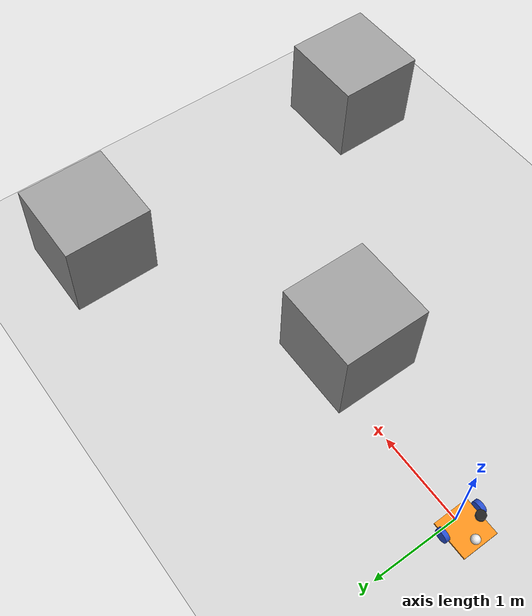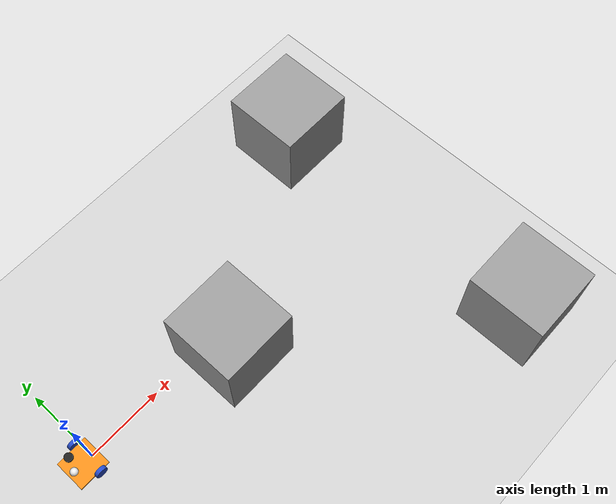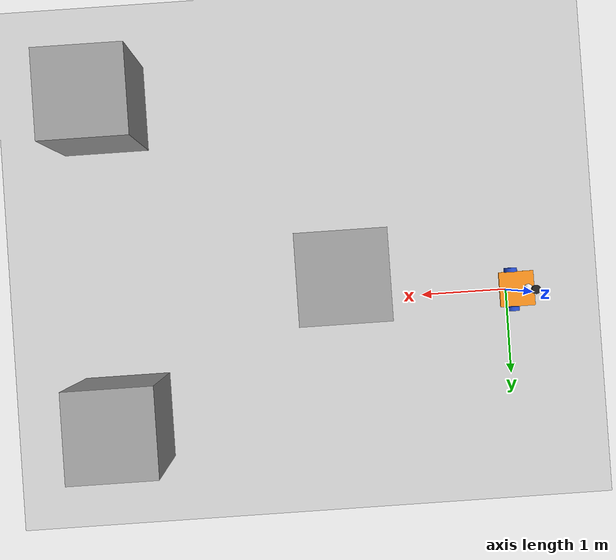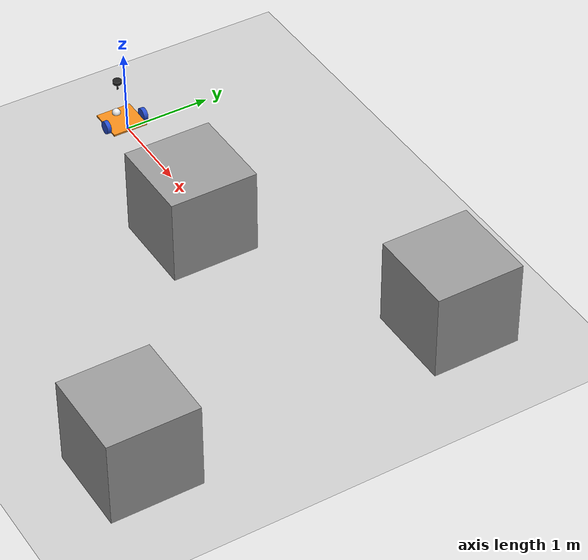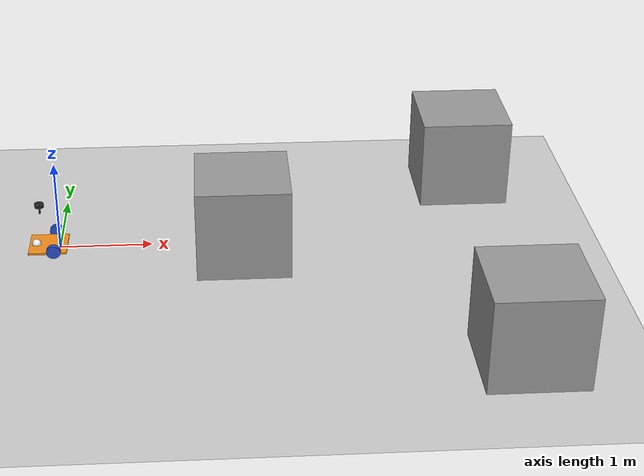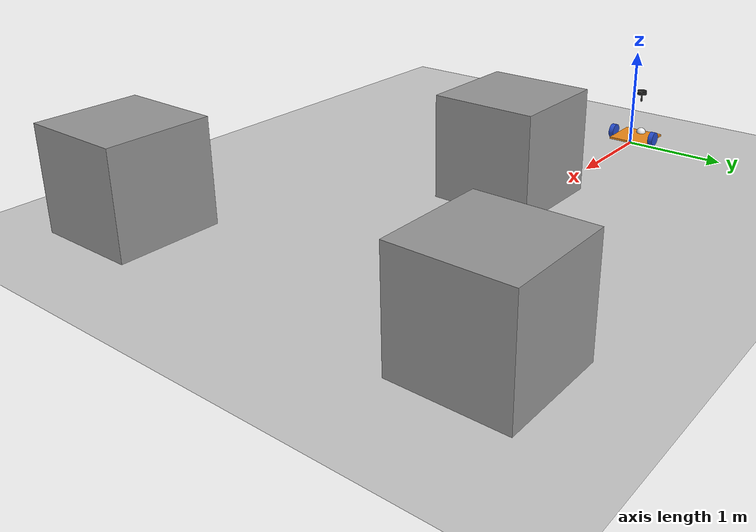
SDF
<sdf version="1.7">
 <world name="default">
  <light name="sun" type="directional">
   <pose>0 0 10 0 -0 0</pose>
   <diffuse>0.8 0.8 0.8 1</diffuse>
   <specular>0.2 0.2 0.2 1</specular>
   <attenuation>
    <range>1000</range>
    <constant>0.9</constant>
    <linear>0.01</linear>
    <quadratic>0.001</quadratic>
   </attenuation>
   <direction>-0.5 0.1 -0.9</direction>
   <spot><inner_angle>0</inner_angle><outer_angle>0</outer_angle><falloff>0</falloff></spot>
  </light>
  <model name="ground_plane">
   <static>1</static>
   <link name="link">
    <collision name="collision">
     <geometry><plane><normal>0 0 1</normal><size>100 100</size></plane></geometry>
     <surface>
      <contact><collide_bitmask>65535</collide_bitmask></contact>
      <friction><ode><mu>100</mu><mu2>50</mu2></ode></friction>
     </surface>
    </collision>
    <visual name="visual">
     <cast_shadows>0</cast_shadows>
     <geometry><plane><normal>0 0 1</normal><size>100 100</size></plane></geometry>
     <material>
      <script><uri>file://media/materials/scripts/gazebo.material</uri><name>Gazebo/Grey</name></script>
     </material>
    </visual>
   </link>
  </model>
  <gravity>0 0 -9.8</gravity>
  <magnetic_field>6e-06 2.3e-05 -4.2e-05</magnetic_field>
  <atmosphere type="adiabatic"/>
  <physics type="ode">
   <max_step_size>0.001</max_step_size>
   <real_time_factor>1</real_time_factor>
   <real_time_update_rate>1000</real_time_update_rate>
  </physics>
  <scene><ambient>0.4 0.4 0.4 1</ambient><background>0.7 0.7 0.7 1</background><shadows>1</shadows></scene>
  <audio><device>default</device></audio>
  <spherical_coordinates>
   <surface_model>EARTH_WGS84</surface_model>
   <latitude_deg>0</latitude_deg>
   <longitude_deg>0</longitude_deg>
   <elevation>0</elevation>
   <heading_deg>0</heading_deg>
  </spherical_coordinates>
  <model name="my_bot">
   <link name="base_link">
    <inertial>
     <pose>-0.08541 0 0.040574 0 -0 0</pose>
     <mass>0.61</mass>
     <inertia>
      <ixx>0.0273306</ixx>
      <ixy>0</ixy>
      <ixz>0.00259486</ixz>
      <iyy>0.0278335</iyy>
      <iyz>0</iyz>
      <izz>0.01499</izz>
     </inertia>
    </inertial>
    <collision name="base_link_fixed_joint_lump__chassis_collision">
     <pose>-0.0725 0 -0.04 0 -0 0</pose>
     <geometry><box><size>0.415 0.415 0.02</size></box></geometry>
    </collision>
    <collision name="base_link_fixed_joint_lump__caster_wheel_collision_1">
     <pose>-0.205 0 -0.025 0 -0 0</pose>
     <geometry><sphere><radius>0.05</radius></sphere></geometry>
     <surface><friction><ode><mu>0.001</mu><mu2>0.001</mu2></ode></friction></surface>
    </collision>
    <collision name="base_link_fixed_joint_lump__laser_frame_collision_2">
     <pose>-0.138 0 0.45 0 -0 0</pose>
     <geometry><cylinder><length>0.04</length><radius>0.05</radius></cylinder></geometry>
    </collision>
    <visual name="base_link_fixed_joint_lump__chassis_visual">
     <pose>-0.0725 0 -0.04 0 -0 0</pose>
     <geometry><box><size>0.415 0.415 0.02</size></box></geometry>
     <material>
      <script><name>Gazebo/Orange</name><uri>file://media/materials/scripts/gazebo.material</uri></script>
     </material>
    </visual>
    <visual name="base_link_fixed_joint_lump__caster_wheel_visual_1">
     <pose>-0.205 0 -0.025 0 -0 0</pose>
     <geometry><sphere><radius>0.05</radius></sphere></geometry>
     <material>
      <script><name>Gazebo/White</name><uri>file://media/materials/scripts/gazebo.material</uri></script>
     </material>
    </visual>
    <visual name="base_link_fixed_joint_lump__laser_frame_visual_2">
     <pose>-0.138 0 0.45 0 -0 0</pose>
     <geometry><cylinder><length>0.04</length><radius>0.05</radius></cylinder></geometry>
     <material>
      <script><name>Gazebo/Black</name><uri>file://media/materials/scripts/gazebo.material</uri></script>
     </material>
    </visual>
    <visual name="base_link_fixed_joint_lump__laser_frame_visual_3">
     <pose>-0.138 0 0.4 0 -0 0</pose>
     <geometry><cylinder><length>0.1</length><radius>0.01</radius></cylinder></geometry>
     <material>
      <script><name>Gazebo/Black</name><uri>file://media/materials/scripts/gazebo.material</uri></script>
     </material>
    </visual>
    <sensor name="laser" type="ray">
     <visualize>0</visualize>
     <update_rate>10</update_rate>
     <ray>
      <scan>
       <horizontal>
        <samples>360</samples>
        <min_angle>-3.14</min_angle>
        <max_angle>3.14</max_angle>
        <resolution>1</resolution>
       </horizontal>
       <vertical><samples>1</samples><min_angle>0</min_angle><max_angle>0</max_angle></vertical>
      </scan>
      <range><min>0.3</min><max>12</max></range>
     </ray>
     <plugin name="laser_controller" filename="libgazebo_ros_ray_sensor.so">
      <ros><argument>~/out:=scan</argument></ros>
      <output_type>sensor_msgs/LaserScan</output_type>
      <frame_name>laser_frame</frame_name>
     </plugin>
     <pose>-0.138 0 0.45 0 -0 0</pose>
    </sensor>
   </link>
   <joint name="left_wheel_joint" type="revolute">
    <pose relative_to="base_link">0 0.23 0 -1.5708 0 0</pose>
    <parent>base_link</parent>
    <child>left_wheel</child>
    <axis>
     <xyz>0 0 1</xyz>
     <limit><lower>-1e+16</lower><upper>1e+16</upper></limit>
     <dynamics><spring_reference>0</spring_reference><spring_stiffness>0</spring_stiffness></dynamics>
    </axis>
   </joint>
   <link name="left_wheel">
    <pose relative_to="left_wheel_joint">0 0 0 0 -0 0</pose>
    <inertial>
     <mass>0.05</mass>
     <inertia>
      <ixx>8.07292e-05</ixx>
      <ixy>0</ixy>
      <ixz>0</ixz>
      <iyy>8.07292e-05</iyy>
      <iyz>0</iyz>
      <izz>0.000140625</izz>
     </inertia>
    </inertial>
    <collision name="left_wheel_collision">
     <geometry><sphere><radius>0.075</radius></sphere></geometry>
    </collision>
    <visual name="left_wheel_visual">
     <geometry><cylinder><length>0.05</length><radius>0.075</radius></cylinder></geometry>
     <material>
      <script><name>Gazebo/Blue</name><uri>file://media/materials/scripts/gazebo.material</uri></script>
     </material>
    </visual>
   </link>
   <joint name="right_wheel_joint" type="revolute">
    <pose relative_to="base_link">0 -0.23 0 1.5708 -0 0</pose>
    <parent>base_link</parent>
    <child>right_wheel</child>
    <axis>
     <xyz>0 0 -1</xyz>
     <limit><lower>-1e+16</lower><upper>1e+16</upper></limit>
     <dynamics><spring_reference>0</spring_reference><spring_stiffness>0</spring_stiffness></dynamics>
    </axis>
   </joint>
   <link name="right_wheel">
    <pose relative_to="right_wheel_joint">0 0 0 0 -0 0</pose>
    <inertial>
     <mass>0.05</mass>
     <inertia>
      <ixx>8.07292e-05</ixx>
      <ixy>0</ixy>
      <ixz>0</ixz>
      <iyy>8.07292e-05</iyy>
      <iyz>0</iyz>
      <izz>0.000140625</izz>
     </inertia>
    </inertial>
    <collision name="right_wheel_collision">
     <geometry><sphere><radius>0.075</radius></sphere></geometry>
    </collision>
    <visual name="right_wheel_visual">
     <geometry><cylinder><length>0.05</length><radius>0.075</radius></cylinder></geometry>
     <material>
      <script><name>Gazebo/Blue</name><uri>file://media/materials/scripts/gazebo.material</uri></script>
     </material>
    </visual>
   </link>
   <static>0</static>
   <plugin name="gazebo_ros2_control" filename="libgazebo_ros2_control.so">
    <parameters>/home/dev/ws/install/articubot_one/share/articubot_one/config/my_controllers.yaml</parameters>
    <parameters>/home/dev/ws/install/articubot_one/share/articubot_one/config/gaz_ros2_ctl_use_sim.yaml</parameters>
   </plugin>
   <pose>-0.055651 -0.000198 0.074998 -8e-06 9e-06 0.000763</pose>
  </model>
  <model name="unit_box">
   <pose>1.99379 -0.29496 0.499995 0 1e-05 0</pose>
   <link name="link">
    <inertial>
     <mass>1</mass>
     <inertia>
      <ixx>0.166667</ixx>
      <ixy>0</ixy>
      <ixz>0</ixz>
      <iyy>0.166667</iyy>
      <iyz>0</iyz>
      <izz>0.166667</izz>
     </inertia>
    </inertial>
    <collision name="collision"><geometry><box><size>1 1 1</size></box></geometry></collision>
    <visual name="visual">
     <geometry><box><size>1 1 1</size></box></geometry>
     <material>
      <script><name>Gazebo/Grey</name><uri>file://media/materials/scripts/gazebo.material</uri></script>
     </material>
    </visual>
   </link>
  </model>
  <model name="unit_box_0">
   <pose>4.65829 -2.46163 0.499995 -1e-05 -0 0</pose>
   <link name="link">
    <inertial>
     <mass>1</mass>
     <inertia>
      <ixx>0.166667</ixx>
      <ixy>0</ixy>
      <ixz>0</ixz>
      <iyy>0.166667</iyy>
      <iyz>0</iyz>
      <izz>0.166667</izz>
     </inertia>
    </inertial>
    <collision name="collision"><geometry><box><size>1 1 1</size></box></geometry></collision>
    <visual name="visual">
     <geometry><box><size>1 1 1</size></box></geometry>
     <material>
      <script><name>Gazebo/Grey</name><uri>file://media/materials/scripts/gazebo.material</uri></script>
     </material>
    </visual>
   </link>
  </model>
  <model name="unit_box_1">
   <pose>4.58106 1.21571 0.5 0 -0 0</pose>
   <link name="link">
    <inertial>
     <mass>1</mass>
     <inertia>
      <ixx>0.166667</ixx>
      <ixy>0</ixy>
      <ixz>0</ixz>
      <iyy>0.166667</iyy>
      <iyz>0</iyz>
      <izz>0.166667</izz>
     </inertia>
    </inertial>
    <collision name="collision"><geometry><box><size>1 1 1</size></box></geometry></collision>
    <visual name="visual">
     <geometry><box><size>1 1 1</size></box></geometry>
     <material>
      <script><name>Gazebo/Grey</name><uri>file://media/materials/scripts/gazebo.material</uri></script>
     </material>
    </visual>
   </link>
  </model>
 </world>
</sdf>
